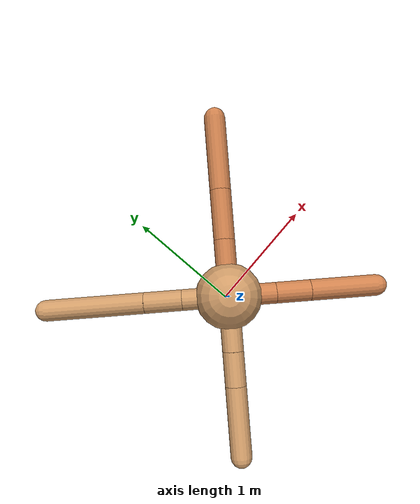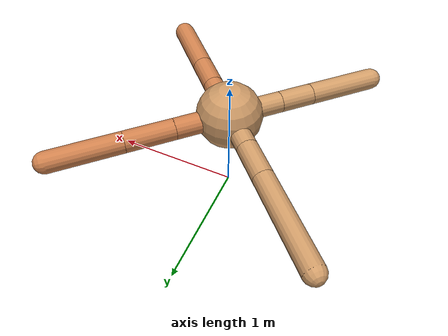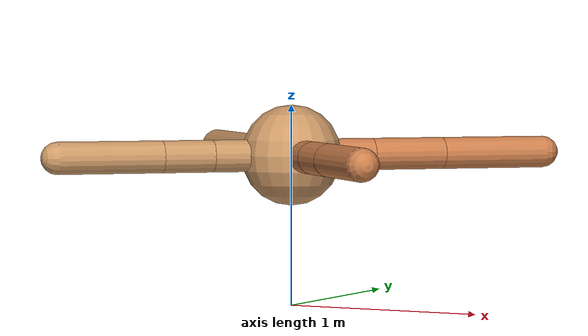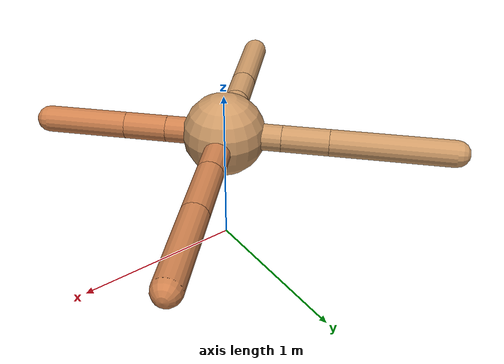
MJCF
<mujoco model="ant">
  <compiler angle="degree" coordinate="local" inertiafromgeom="true" />
  <option integrator="RK4" timestep="0.01" />
  <custom>
    <numeric data="0.0 0.0 0.55 1.0 0.0 0.0 0.0 0.0 1.0 0.0 -1.0 0.0 -1.0 0.0 1.0" name="init_qpos" />
  </custom>
  <default>
    <joint armature="1" damping="1" limited="true" />
    <geom conaffinity="0" condim="3" density="5.0" friction="1.5 0.1 0.1" margin="0.01" rgba="0.8 0.6 0.4 1" />
  </default>
  <worldbody>
    <body name="torso" pos="0 0 0.75">
      <geom name="torso_geom" pos="0 0 0" size="0.25" type="sphere" />

      <body name="front_left_leg" pos="0 0 0">
        <geom fromto="0.0 0.0 0.0 0.2985023909095122 0.2985023909095122 0.0" name="aux_1_geom" size="0.08" type="capsule" rgba=".8 .5 .3 1" />
        <body name="aux_1" pos="0.2985023909095122 0.2985023909095122 0.0">
          <joint axis="0 0 1" name="hip_1" pos="0.0 0.0 0.0" range="-40 40" type="hinge" />
          <geom fromto="0.0 0.0 0.0 0.26304428147229436 0.26304428147229436 0.0" name="left_leg_geom" size="0.08" type="capsule" rgba=".8 .5 .3 1" />
          <body pos="0.26304428147229436 0.26304428147229436 0.0" name="front_left_foot">
            <joint axis="-1 1 0" name="ankle_1" pos="0.0 0.0 0.0" range="30 100" type="hinge" />
            <geom fromto="0.0 0.0 0.0 0.38595369772230764 0.38595369772230764 0.0" name="left_ankle_geom" size="0.08" type="capsule" rgba=".8 .5 .3 1" />
          </body>
        </body>
      </body>
      <body name="front_right_leg" pos="0 0 0">
        <geom fromto="0.0 0.0 0.0 -0.2451986676801835 0.2451986676801835 0.0" name="aux_2_geom" size="0.08" type="capsule" />
        <body name="aux_2" pos="-0.2451986676801835 0.2451986676801835 0.0">
          <joint axis="0 0 1" name="hip_2" pos="0.0 0.0 0.0" range="-40 40" type="hinge" />
          <geom fromto="0.0 0.0 0.0 -0.1986847404903036 0.1986847404903036 0.0" name="right_leg_geom" size="0.08" type="capsule" />
          <body pos="-0.1986847404903036 0.1986847404903036 0.0" name="front_right_foot">
            <joint axis="1 1 0" name="ankle_2" pos="0.0 0.0 0.0" range="-100 -30" type="hinge" />
            <geom fromto="0.0 0.0 0.0 -0.5151305267362761 0.5151305267362761 0.0" name="right_ankle_geom" size="0.08" type="capsule" />
          </body>
        </body>
      </body>
      <body name="left_back_leg" pos="0 0 0">
        <geom fromto="0.0 0.0 0.0 -0.28821240886735816 -0.28821240886735816 0.0" name="aux_3_geom" size="0.08" type="capsule" />
        <body name="aux_3" pos="-0.28821240886735816 -0.28821240886735816 0.0">
          <joint axis="0 0 1" name="hip_3" pos="0.0 0.0 0.0" range="-40 40" type="hinge" />
          <geom fromto="0.0 0.0 0.0 -0.1808751113688871 -0.1808751113688871 0.0" name="back_leg_geom" size="0.08" type="capsule" />
          <body pos="-0.1808751113688871 -0.1808751113688871 0.0" name="left_back_foot">
            <joint axis="-1 1 0" name="ankle_3" pos="0.0 0.0 0.0" range="-100 -30" type="hinge" />
            <geom fromto="0.0 0.0 0.0 -0.3702140495848209 -0.3702140495848209 0.0" name="third_ankle_geom" size="0.08" type="capsule" />
          </body>
        </body>
      </body>
      <body name="right_back_leg" pos="0 0 0">
        <geom fromto="0.0 0.0 0.0 0.24850411533699762 -0.24850411533699762 0.0" name="aux_4_geom" size="0.08" type="capsule" rgba=".8 .5 .3 1" />
        <body name="aux_4" pos="0.24850411533699762 -0.24850411533699762 0.0">
          <joint axis="0 0 1" name="hip_4" pos="0.0 0.0 0.0" range="-40 40" type="hinge" />
          <geom fromto="0.0 0.0 0.0 0.18024200753878272 -0.18024200753878272 0.0" name="rightback_leg_geom" size="0.08" type="capsule" rgba=".8 .5 .3 1" />
          <body pos="0.18024200753878272 -0.18024200753878272 0.0" name="right_back_foot">
            <joint axis="1 1 0" name="ankle_4" pos="0.0 0.0 0.0" range="30 100" type="hinge" />
            <geom fromto="0.0 0.0 0.0 0.34534344495674274 -0.34534344495674274 0.0" name="fourth_ankle_geom" size="0.08" type="capsule" rgba=".8 .5 .3 1" />
          </body>
        </body>
      </body>
    </body>
  </worldbody>
  <actuator>
    <motor ctrllimited="true" ctrlrange="-1.0 1.0" joint="hip_4" gear="150" />
    <motor ctrllimited="true" ctrlrange="-1.0 1.0" joint="ankle_4" gear="150" />
    <motor ctrllimited="true" ctrlrange="-1.0 1.0" joint="hip_1" gear="150" />
    <motor ctrllimited="true" ctrlrange="-1.0 1.0" joint="ankle_1" gear="150" />
    <motor ctrllimited="true" ctrlrange="-1.0 1.0" joint="hip_2" gear="150" />
    <motor ctrllimited="true" ctrlrange="-1.0 1.0" joint="ankle_2" gear="150" />
    <motor ctrllimited="true" ctrlrange="-1.0 1.0" joint="hip_3" gear="150" />
    <motor ctrllimited="true" ctrlrange="-1.0 1.0" joint="ankle_3" gear="150" />
  </actuator>
</mujoco>
